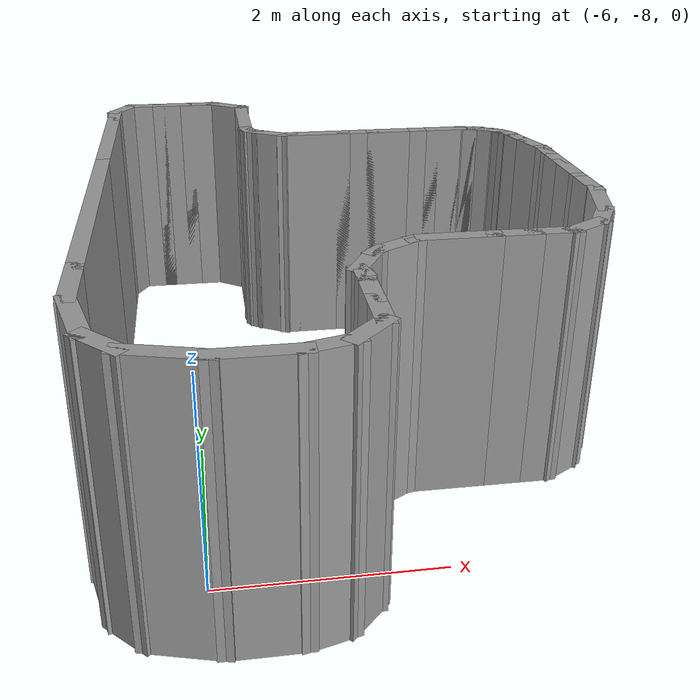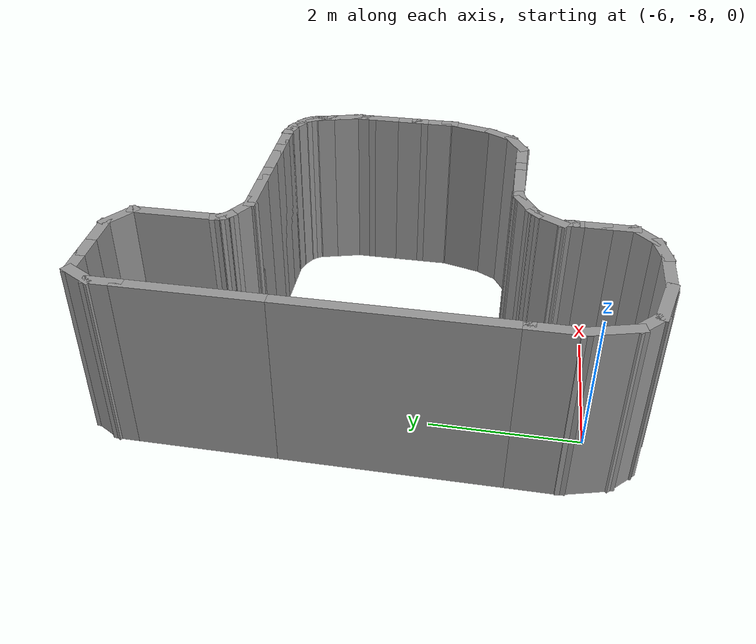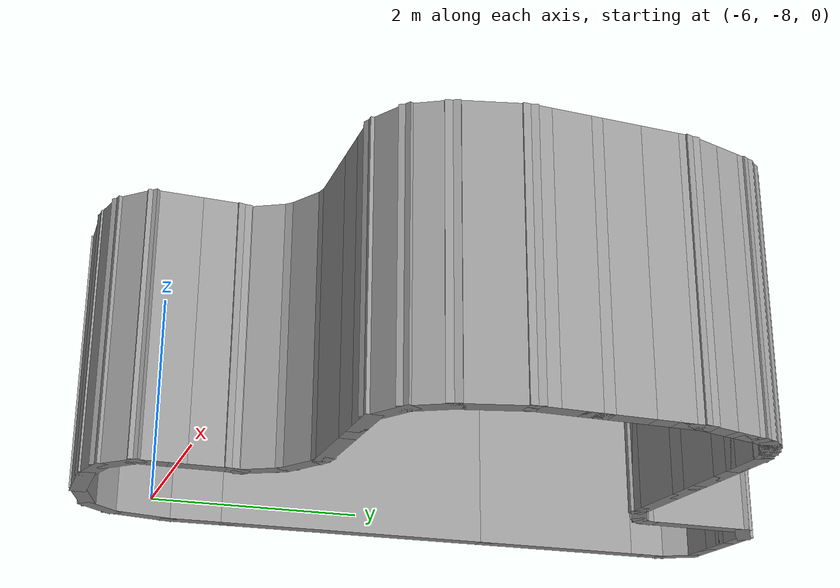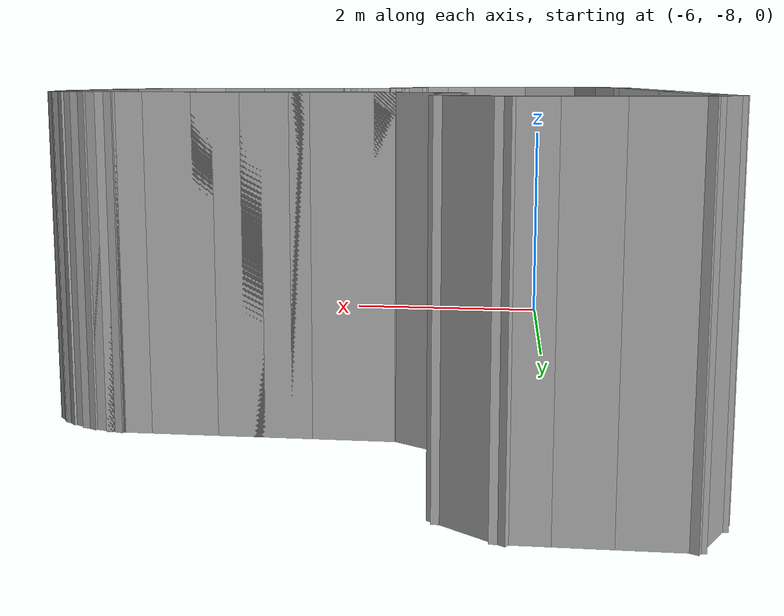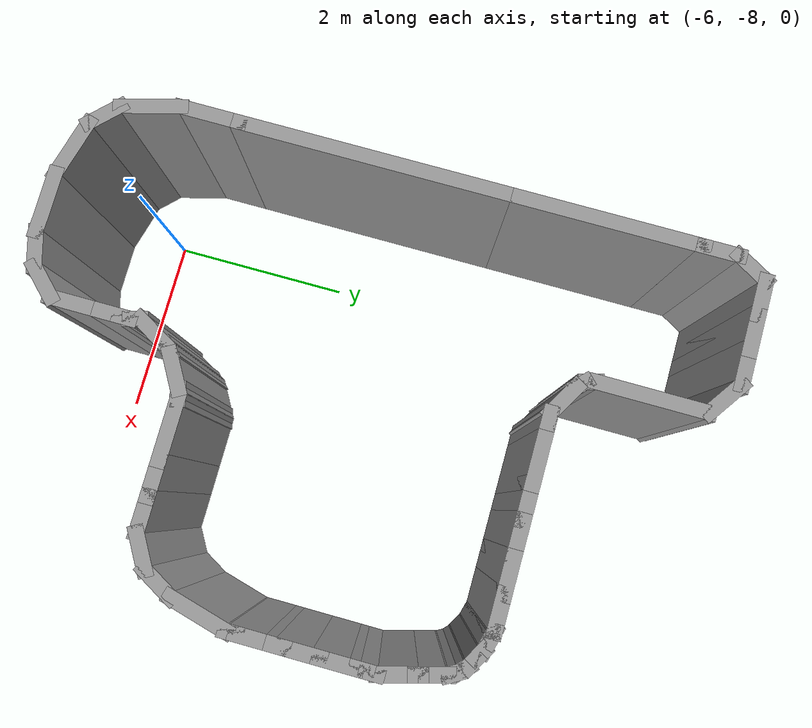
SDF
<?xml version='1.0'?>
<sdf version='1.7'>
  <model name='Untitled1'>
    <pose>-3.48045 -4.38921 0 0 -0 0</pose>
    <link name='Wall_0'>
      <collision name='Wall_0_Collision'>
        <geometry>
          <box>
            <size>1.25 0.15 2.5</size>
          </box>
        </geometry>
        <pose>0 0 1.25 0 -0 0</pose>
      </collision>
      <visual name='Wall_0_Visual'>
        <pose>0 0 1.25 0 -0 0</pose>
        <geometry>
          <box>
            <size>1.25 0.15 2.5</size>
          </box>
        </geometry>
        <material>
          <script>
            <uri>file://media/materials/scripts/gazebo.material</uri>
            <name>Gazebo/Grey</name>
          </script>
          <ambient>1 1 1 1</ambient>
        </material>
        <meta>
          <layer>0</layer>
        </meta>
      </visual>
      <pose>-1.8122 1.84891 0 0 -0 -1.5708</pose>
    </link>
    <link name='Wall_1'>
      <collision name='Wall_1_Collision'>
        <geometry>
          <box>
            <size>0.25 0.15 2.5</size>
          </box>
        </geometry>
        <pose>0 0 1.25 0 -0 0</pose>
      </collision>
      <visual name='Wall_1_Visual'>
        <pose>0 0 1.25 0 -0 0</pose>
        <geometry>
          <box>
            <size>0.25 0.15 2.5</size>
          </box>
        </geometry>
        <material>
          <script>
            <uri>file://media/materials/scripts/gazebo.material</uri>
            <name>Gazebo/Grey</name>
          </script>
          <ambient>1 1 1 1</ambient>
        </material>
        <meta>
          <layer>0</layer>
        </meta>
      </visual>
      <pose>-1.79926 1.25061 0 0 -0 -1.309</pose>
    </link>
    <link name='Wall_11'>
      <collision name='Wall_11_Collision'>
        <geometry>
          <box>
            <size>0.15 0.15 2.5</size>
          </box>
        </geometry>
        <pose>0 0 1.25 0 -0 0</pose>
      </collision>
      <visual name='Wall_11_Visual'>
        <pose>0 0 1.25 0 -0 0</pose>
        <geometry>
          <box>
            <size>0.15 0.15 2.5</size>
          </box>
        </geometry>
        <material>
          <script>
            <uri>file://media/materials/scripts/gazebo.material</uri>
            <name>Gazebo/Grey</name>
          </script>
          <ambient>1 1 1 1</ambient>
        </material>
        <meta>
          <layer>0</layer>
        </meta>
      </visual>
      <pose>0.6875 0.956604 0 0 -0 0</pose>
    </link>
    <link name='Wall_12'>
      <collision name='Wall_12_Collision'>
        <geometry>
          <box>
            <size>0.25 0.15 2.5</size>
          </box>
        </geometry>
        <pose>0 0 1.25 0 -0 0</pose>
      </collision>
      <visual name='Wall_12_Visual'>
        <pose>0 0 1.25 0 -0 0</pose>
        <geometry>
          <box>
            <size>0.25 0.15 2.5</size>
          </box>
        </geometry>
        <material>
          <script>
            <uri>file://media/materials/scripts/gazebo.material</uri>
            <name>Gazebo/Grey</name>
          </script>
          <ambient>1 1 1 1</ambient>
        </material>
        <meta>
          <layer>0</layer>
        </meta>
      </visual>
      <pose>0.735796 0.943663 0 0 -0 -0.261799</pose>
    </link>
    <link name='Wall_13'>
      <collision name='Wall_13_Collision'>
        <geometry>
          <box>
            <size>0.25 0.15 2.5</size>
          </box>
        </geometry>
        <pose>0 0 1.25 0 -0 0</pose>
      </collision>
      <visual name='Wall_13_Visual'>
        <pose>0 0 1.25 0 -0 0</pose>
        <geometry>
          <box>
            <size>0.25 0.15 2.5</size>
          </box>
        </geometry>
        <material>
          <script>
            <uri>file://media/materials/scripts/gazebo.material</uri>
            <name>Gazebo/Grey</name>
          </script>
          <ambient>1 1 1 1</ambient>
        </material>
        <meta>
          <layer>0</layer>
        </meta>
      </visual>
      <pose>0.832389 0.917781 0 0 -0 -0.261799</pose>
    </link>
    <link name='Wall_14'>
      <collision name='Wall_14_Collision'>
        <geometry>
          <box>
            <size>0.25 0.15 2.5</size>
          </box>
        </geometry>
        <pose>0 0 1.25 0 -0 0</pose>
      </collision>
      <visual name='Wall_14_Visual'>
        <pose>0 0 1.25 0 -0 0</pose>
        <geometry>
          <box>
            <size>0.25 0.15 2.5</size>
          </box>
        </geometry>
        <material>
          <script>
            <uri>file://media/materials/scripts/gazebo.material</uri>
            <name>Gazebo/Grey</name>
          </script>
          <ambient>1 1 1 1</ambient>
        </material>
        <meta>
          <layer>0</layer>
        </meta>
      </visual>
      <pose>0.923986 0.87984 0 0 -0 -0.523599</pose>
    </link>
    <link name='Wall_15'>
      <collision name='Wall_15_Collision'>
        <geometry>
          <box>
            <size>0.25 0.15 2.5</size>
          </box>
        </geometry>
        <pose>0 0 1.25 0 -0 0</pose>
      </collision>
      <visual name='Wall_15_Visual'>
        <pose>0 0 1.25 0 -0 0</pose>
        <geometry>
          <box>
            <size>0.25 0.15 2.5</size>
          </box>
        </geometry>
        <material>
          <script>
            <uri>file://media/materials/scripts/gazebo.material</uri>
            <name>Gazebo/Grey</name>
          </script>
          <ambient>1 1 1 1</ambient>
        </material>
        <meta>
          <layer>0</layer>
        </meta>
      </visual>
      <pose>1.01059 0.82984 0 0 -0 -0.523599</pose>
    </link>
    <link name='Wall_16'>
      <collision name='Wall_16_Collision'>
        <geometry>
          <box>
            <size>0.25 0.15 2.5</size>
          </box>
        </geometry>
        <pose>0 0 1.25 0 -0 0</pose>
      </collision>
      <visual name='Wall_16_Visual'>
        <pose>0 0 1.25 0 -0 0</pose>
        <geometry>
          <box>
            <size>0.25 0.15 2.5</size>
          </box>
        </geometry>
        <material>
          <script>
            <uri>file://media/materials/scripts/gazebo.material</uri>
            <name>Gazebo/Grey</name>
          </script>
          <ambient>1 1 1 1</ambient>
        </material>
        <meta>
          <layer>0</layer>
        </meta>
      </visual>
      <pose>1.08925 0.769485 0 0 -0 -0.785398</pose>
    </link>
    <link name='Wall_17'>
      <collision name='Wall_17_Collision'>
        <geometry>
          <box>
            <size>0.25 0.15 2.5</size>
          </box>
        </geometry>
        <pose>0 0 1.25 0 -0 0</pose>
      </collision>
      <visual name='Wall_17_Visual'>
        <pose>0 0 1.25 0 -0 0</pose>
        <geometry>
          <box>
            <size>0.25 0.15 2.5</size>
          </box>
        </geometry>
        <material>
          <script>
            <uri>file://media/materials/scripts/gazebo.material</uri>
            <name>Gazebo/Grey</name>
          </script>
          <ambient>1 1 1 1</ambient>
        </material>
        <meta>
          <layer>0</layer>
        </meta>
      </visual>
      <pose>1.1496 0.690828 0 0 -0 -1.0472</pose>
    </link>
    <link name='Wall_18'>
      <collision name='Wall_18_Collision'>
        <geometry>
          <box>
            <size>0.25 0.15 2.5</size>
          </box>
        </geometry>
        <pose>0 0 1.25 0 -0 0</pose>
      </collision>
      <visual name='Wall_18_Visual'>
        <pose>0 0 1.25 0 -0 0</pose>
        <geometry>
          <box>
            <size>0.25 0.15 2.5</size>
          </box>
        </geometry>
        <material>
          <script>
            <uri>file://media/materials/scripts/gazebo.material</uri>
            <name>Gazebo/Grey</name>
          </script>
          <ambient>1 1 1 1</ambient>
        </material>
        <meta>
          <layer>0</layer>
        </meta>
      </visual>
      <pose>1.18754 0.599231 0 0 -0 -1.309</pose>
    </link>
    <link name='Wall_19'>
      <collision name='Wall_19_Collision'>
        <geometry>
          <box>
            <size>0.25 0.15 2.5</size>
          </box>
        </geometry>
        <pose>0 0 1.25 0 -0 0</pose>
      </collision>
      <visual name='Wall_19_Visual'>
        <pose>0 0 1.25 0 -0 0</pose>
        <geometry>
          <box>
            <size>0.25 0.15 2.5</size>
          </box>
        </geometry>
        <material>
          <script>
            <uri>file://media/materials/scripts/gazebo.material</uri>
            <name>Gazebo/Grey</name>
          </script>
          <ambient>1 1 1 1</ambient>
        </material>
        <meta>
          <layer>0</layer>
        </meta>
      </visual>
      <pose>1.21342 0.502638 0 0 -0 -1.309</pose>
    </link>
    <link name='Wall_2'>
      <collision name='Wall_2_Collision'>
        <geometry>
          <box>
            <size>0.25 0.15 2.5</size>
          </box>
        </geometry>
        <pose>0 0 1.25 0 -0 0</pose>
      </collision>
      <visual name='Wall_2_Visual'>
        <pose>0 0 1.25 0 -0 0</pose>
        <geometry>
          <box>
            <size>0.25 0.15 2.5</size>
          </box>
        </geometry>
        <material>
          <script>
            <uri>file://media/materials/scripts/gazebo.material</uri>
            <name>Gazebo/Grey</name>
          </script>
          <ambient>1 1 1 1</ambient>
        </material>
        <meta>
          <layer>0</layer>
        </meta>
      </visual>
      <pose>-1.75096 1.16696 0 0 -0 -0.785398</pose>
    </link>
    <link name='Wall_20'>
      <collision name='Wall_20_Collision'>
        <geometry>
          <box>
            <size>0.25 0.15 2.5</size>
          </box>
        </geometry>
        <pose>0 0 1.25 0 -0 0</pose>
      </collision>
      <visual name='Wall_20_Visual'>
        <pose>0 0 1.25 0 -0 0</pose>
        <geometry>
          <box>
            <size>0.25 0.15 2.5</size>
          </box>
        </geometry>
        <material>
          <script>
            <uri>file://media/materials/scripts/gazebo.material</uri>
            <name>Gazebo/Grey</name>
          </script>
          <ambient>1 1 1 1</ambient>
        </material>
        <meta>
          <layer>0</layer>
        </meta>
      </visual>
      <pose>1.23931 0.406045 0 0 -0 -1.309</pose>
    </link>
    <link name='Wall_21'>
      <collision name='Wall_21_Collision'>
        <geometry>
          <box>
            <size>0.5 0.15 2.5</size>
          </box>
        </geometry>
        <pose>0 0 1.25 0 -0 0</pose>
      </collision>
      <visual name='Wall_21_Visual'>
        <pose>0 0 1.25 0 -0 0</pose>
        <geometry>
          <box>
            <size>0.5 0.15 2.5</size>
          </box>
        </geometry>
        <material>
          <script>
            <uri>file://media/materials/scripts/gazebo.material</uri>
            <name>Gazebo/Grey</name>
          </script>
          <ambient>1 1 1 1</ambient>
        </material>
        <meta>
          <layer>0</layer>
        </meta>
      </visual>
      <pose>1.29754 0.188712 0 0 -0 -1.309</pose>
    </link>
    <link name='Wall_22'>
      <collision name='Wall_22_Collision'>
        <geometry>
          <box>
            <size>0.25 0.15 2.5</size>
          </box>
        </geometry>
        <pose>0 0 1.25 0 -0 0</pose>
      </collision>
      <visual name='Wall_22_Visual'>
        <pose>0 0 1.25 0 -0 0</pose>
        <geometry>
          <box>
            <size>0.25 0.15 2.5</size>
          </box>
        </geometry>
        <material>
          <script>
            <uri>file://media/materials/scripts/gazebo.material</uri>
            <name>Gazebo/Grey</name>
          </script>
          <ambient>1 1 1 1</ambient>
        </material>
        <meta>
          <layer>0</layer>
        </meta>
      </visual>
      <pose>1.34283 -0.030325 0 0 -0 -1.5708</pose>
    </link>
    <link name='Wall_23'>
      <collision name='Wall_23_Collision'>
        <geometry>
          <box>
            <size>0.25 0.15 2.5</size>
          </box>
        </geometry>
        <pose>0 0 1.25 0 -0 0</pose>
      </collision>
      <visual name='Wall_23_Visual'>
        <pose>0 0 1.25 0 -0 0</pose>
        <geometry>
          <box>
            <size>0.25 0.15 2.5</size>
          </box>
        </geometry>
        <material>
          <script>
            <uri>file://media/materials/scripts/gazebo.material</uri>
            <name>Gazebo/Grey</name>
          </script>
          <ambient>1 1 1 1</ambient>
        </material>
        <meta>
          <layer>0</layer>
        </meta>
      </visual>
      <pose>1.34283 -0.130325 0 0 -0 -1.5708</pose>
    </link>
    <link name='Wall_24'>
      <collision name='Wall_24_Collision'>
        <geometry>
          <box>
            <size>0.5 0.15 2.5</size>
          </box>
        </geometry>
        <pose>0 0 1.25 0 -0 0</pose>
      </collision>
      <visual name='Wall_24_Visual'>
        <pose>0 0 1.25 0 -0 0</pose>
        <geometry>
          <box>
            <size>0.5 0.15 2.5</size>
          </box>
        </geometry>
        <material>
          <script>
            <uri>file://media/materials/scripts/gazebo.material</uri>
            <name>Gazebo/Grey</name>
          </script>
          <ambient>1 1 1 1</ambient>
        </material>
        <meta>
          <layer>0</layer>
        </meta>
      </visual>
      <pose>1.34283 -0.355325 0 0 -0 -1.5708</pose>
    </link>
    <link name='Wall_25'>
      <collision name='Wall_25_Collision'>
        <geometry>
          <box>
            <size>0.5 0.15 2.5</size>
          </box>
        </geometry>
        <pose>0 0 1.25 0 -0 0</pose>
      </collision>
      <visual name='Wall_25_Visual'>
        <pose>0 0 1.25 0 -0 0</pose>
        <geometry>
          <box>
            <size>0.5 0.15 2.5</size>
          </box>
        </geometry>
        <material>
          <script>
            <uri>file://media/materials/scripts/gazebo.material</uri>
            <name>Gazebo/Grey</name>
          </script>
          <ambient>1 1 1 1</ambient>
        </material>
        <meta>
          <layer>0</layer>
        </meta>
      </visual>
      <pose>1.34283 -0.705325 0 0 -0 -1.5708</pose>
    </link>
    <link name='Wall_26'>
      <collision name='Wall_26_Collision'>
        <geometry>
          <box>
            <size>0.25 0.15 2.5</size>
          </box>
        </geometry>
        <pose>0 0 1.25 0 -0 0</pose>
      </collision>
      <visual name='Wall_26_Visual'>
        <pose>0 0 1.25 0 -0 0</pose>
        <geometry>
          <box>
            <size>0.25 0.15 2.5</size>
          </box>
        </geometry>
        <material>
          <script>
            <uri>file://media/materials/scripts/gazebo.material</uri>
            <name>Gazebo/Grey</name>
          </script>
          <ambient>1 1 1 1</ambient>
        </material>
        <meta>
          <layer>0</layer>
        </meta>
      </visual>
      <pose>1.34283 -0.930325 0 0 -0 -1.5708</pose>
    </link>
    <link name='Wall_27'>
      <collision name='Wall_27_Collision'>
        <geometry>
          <box>
            <size>0.5 0.15 2.5</size>
          </box>
        </geometry>
        <pose>0 0 1.25 0 -0 0</pose>
      </collision>
      <visual name='Wall_27_Visual'>
        <pose>0 0 1.25 0 -0 0</pose>
        <geometry>
          <box>
            <size>0.5 0.15 2.5</size>
          </box>
        </geometry>
        <material>
          <script>
            <uri>file://media/materials/scripts/gazebo.material</uri>
            <name>Gazebo/Grey</name>
          </script>
          <ambient>1 1 1 1</ambient>
        </material>
        <meta>
          <layer>0</layer>
        </meta>
      </visual>
      <pose>1.34283 -1.15532 0 0 -0 -1.5708</pose>
    </link>
    <link name='Wall_28'>
      <collision name='Wall_28_Collision'>
        <geometry>
          <box>
            <size>0.25 0.15 2.5</size>
          </box>
        </geometry>
        <pose>0 0 1.25 0 -0 0</pose>
      </collision>
      <visual name='Wall_28_Visual'>
        <pose>0 0 1.25 0 -0 0</pose>
        <geometry>
          <box>
            <size>0.25 0.15 2.5</size>
          </box>
        </geometry>
        <material>
          <script>
            <uri>file://media/materials/scripts/gazebo.material</uri>
            <name>Gazebo/Grey</name>
          </script>
          <ambient>1 1 1 1</ambient>
        </material>
        <meta>
          <layer>0</layer>
        </meta>
      </visual>
      <pose>1.34283 -1.38033 0 0 -0 -1.5708</pose>
    </link>
    <link name='Wall_29'>
      <collision name='Wall_29_Collision'>
        <geometry>
          <box>
            <size>0.75 0.15 2.5</size>
          </box>
        </geometry>
        <pose>0 0 1.25 0 -0 0</pose>
      </collision>
      <visual name='Wall_29_Visual'>
        <pose>0 0 1.25 0 -0 0</pose>
        <geometry>
          <box>
            <size>0.75 0.15 2.5</size>
          </box>
        </geometry>
        <material>
          <script>
            <uri>file://media/materials/scripts/gazebo.material</uri>
            <name>Gazebo/Grey</name>
          </script>
          <ambient>1 1 1 1</ambient>
        </material>
        <meta>
          <layer>0</layer>
        </meta>
      </visual>
      <pose>1.26519 -1.7201 0 0 -0 -1.8326</pose>
    </link>
    <link name='Wall_3'>
      <collision name='Wall_3_Collision'>
        <geometry>
          <box>
            <size>0.5 0.15 2.5</size>
          </box>
        </geometry>
        <pose>0 0 1.25 0 -0 0</pose>
      </collision>
      <visual name='Wall_3_Visual'>
        <pose>0 0 1.25 0 -0 0</pose>
        <geometry>
          <box>
            <size>0.5 0.15 2.5</size>
          </box>
        </geometry>
        <material>
          <script>
            <uri>file://media/materials/scripts/gazebo.material</uri>
            <name>Gazebo/Grey</name>
          </script>
          <ambient>1 1 1 1</ambient>
        </material>
        <meta>
          <layer>0</layer>
        </meta>
      </visual>
      <pose>-1.56405 1.0441 0 0 -0 -0.523599</pose>
    </link>
    <link name='Wall_30'>
      <collision name='Wall_30_Collision'>
        <geometry>
          <box>
            <size>0.5 0.15 2.5</size>
          </box>
        </geometry>
        <pose>0 0 1.25 0 -0 0</pose>
      </collision>
      <visual name='Wall_30_Visual'>
        <pose>0 0 1.25 0 -0 0</pose>
        <geometry>
          <box>
            <size>0.5 0.15 2.5</size>
          </box>
        </geometry>
        <material>
          <script>
            <uri>file://media/materials/scripts/gazebo.material</uri>
            <name>Gazebo/Grey</name>
          </script>
          <ambient>1 1 1 1</ambient>
        </material>
        <meta>
          <layer>0</layer>
        </meta>
      </visual>
      <pose>1.10004 -2.16143 0 0 -0 -2.0944</pose>
    </link>
    <link name='Wall_31'>
      <collision name='Wall_31_Collision'>
        <geometry>
          <box>
            <size>0.5 0.15 2.5</size>
          </box>
        </geometry>
        <pose>0 0 1.25 0 -0 0</pose>
      </collision>
      <visual name='Wall_31_Visual'>
        <pose>0 0 1.25 0 -0 0</pose>
        <geometry>
          <box>
            <size>0.5 0.15 2.5</size>
          </box>
        </geometry>
        <material>
          <script>
            <uri>file://media/materials/scripts/gazebo.material</uri>
            <name>Gazebo/Grey</name>
          </script>
          <ambient>1 1 1 1</ambient>
        </material>
        <meta>
          <layer>0</layer>
        </meta>
      </visual>
      <pose>0.860987 -2.40049 0 0 -0 -2.61799</pose>
    </link>
    <link name='Wall_32'>
      <collision name='Wall_32_Collision'>
        <geometry>
          <box>
            <size>0.5 0.15 2.5</size>
          </box>
        </geometry>
        <pose>0 0 1.25 0 -0 0</pose>
      </collision>
      <visual name='Wall_32_Visual'>
        <pose>0 0 1.25 0 -0 0</pose>
        <geometry>
          <box>
            <size>0.5 0.15 2.5</size>
          </box>
        </geometry>
        <material>
          <script>
            <uri>file://media/materials/scripts/gazebo.material</uri>
            <name>Gazebo/Grey</name>
          </script>
          <ambient>1 1 1 1</ambient>
        </material>
        <meta>
          <layer>0</layer>
        </meta>
      </visual>
      <pose>0.534433 -2.48799 0 0 -0 3.14159</pose>
    </link>
    <link name='Wall_33'>
      <collision name='Wall_33_Collision'>
        <geometry>
          <box>
            <size>0.5 0.15 2.5</size>
          </box>
        </geometry>
        <pose>0 0 1.25 0 -0 0</pose>
      </collision>
      <visual name='Wall_33_Visual'>
        <pose>0 0 1.25 0 -0 0</pose>
        <geometry>
          <box>
            <size>0.5 0.15 2.5</size>
          </box>
        </geometry>
        <material>
          <script>
            <uri>file://media/materials/scripts/gazebo.material</uri>
            <name>Gazebo/Grey</name>
          </script>
          <ambient>1 1 1 1</ambient>
        </material>
        <meta>
          <layer>0</layer>
        </meta>
      </visual>
      <pose>0.184433 -2.48799 0 0 -0 3.14159</pose>
    </link>
    <link name='Wall_34'>
      <collision name='Wall_34_Collision'>
        <geometry>
          <box>
            <size>0.75 0.15 2.5</size>
          </box>
        </geometry>
        <pose>0 0 1.25 0 -0 0</pose>
      </collision>
      <visual name='Wall_34_Visual'>
        <pose>0 0 1.25 0 -0 0</pose>
        <geometry>
          <box>
            <size>0.75 0.15 2.5</size>
          </box>
        </geometry>
        <material>
          <script>
            <uri>file://media/materials/scripts/gazebo.material</uri>
            <name>Gazebo/Grey</name>
          </script>
          <ambient>1 1 1 1</ambient>
        </material>
        <meta>
          <layer>0</layer>
        </meta>
      </visual>
      <pose>-0.290567 -2.48799 0 0 -0 3.14159</pose>
    </link>
    <link name='Wall_35'>
      <collision name='Wall_35_Collision'>
        <geometry>
          <box>
            <size>0.25 0.15 2.5</size>
          </box>
        </geometry>
        <pose>0 0 1.25 0 -0 0</pose>
      </collision>
      <visual name='Wall_35_Visual'>
        <pose>0 0 1.25 0 -0 0</pose>
        <geometry>
          <box>
            <size>0.25 0.15 2.5</size>
          </box>
        </geometry>
        <material>
          <script>
            <uri>file://media/materials/scripts/gazebo.material</uri>
            <name>Gazebo/Grey</name>
          </script>
          <ambient>1 1 1 1</ambient>
        </material>
        <meta>
          <layer>0</layer>
        </meta>
      </visual>
      <pose>-0.638864 -2.50093 0 0 -0 -2.87979</pose>
    </link>
    <link name='Wall_36'>
      <collision name='Wall_36_Collision'>
        <geometry>
          <box>
            <size>0.5 0.15 2.5</size>
          </box>
        </geometry>
        <pose>0 0 1.25 0 -0 0</pose>
      </collision>
      <visual name='Wall_36_Visual'>
        <pose>0 0 1.25 0 -0 0</pose>
        <geometry>
          <box>
            <size>0.5 0.15 2.5</size>
          </box>
        </geometry>
        <material>
          <script>
            <uri>file://media/materials/scripts/gazebo.material</uri>
            <name>Gazebo/Grey</name>
          </script>
          <ambient>1 1 1 1</ambient>
        </material>
        <meta>
          <layer>0</layer>
        </meta>
      </visual>
      <pose>-0.838714 -2.60137 0 0 -0 -2.61799</pose>
    </link>
    <link name='Wall_37'>
      <collision name='Wall_37_Collision'>
        <geometry>
          <box>
            <size>0.25 0.15 2.5</size>
          </box>
        </geometry>
        <pose>0 0 1.25 0 -0 0</pose>
      </collision>
      <visual name='Wall_37_Visual'>
        <pose>0 0 1.25 0 -0 0</pose>
        <geometry>
          <box>
            <size>0.25 0.15 2.5</size>
          </box>
        </geometry>
        <material>
          <script>
            <uri>file://media/materials/scripts/gazebo.material</uri>
            <name>Gazebo/Grey</name>
          </script>
          <ambient>1 1 1 1</ambient>
        </material>
        <meta>
          <layer>0</layer>
        </meta>
      </visual>
      <pose>-1.02562 -2.72423 0 0 -0 -2.35619</pose>
    </link>
    <link name='Wall_38'>
      <collision name='Wall_38_Collision'>
        <geometry>
          <box>
            <size>0.5 0.15 2.5</size>
          </box>
        </geometry>
        <pose>0 0 1.25 0 -0 0</pose>
      </collision>
      <visual name='Wall_38_Visual'>
        <pose>0 0 1.25 0 -0 0</pose>
        <geometry>
          <box>
            <size>0.5 0.15 2.5</size>
          </box>
        </geometry>
        <material>
          <script>
            <uri>file://media/materials/scripts/gazebo.material</uri>
            <name>Gazebo/Grey</name>
          </script>
          <ambient>1 1 1 1</ambient>
        </material>
        <meta>
          <layer>0</layer>
        </meta>
      </visual>
      <pose>-1.14848 -2.91114 0 0 -0 -2.0944</pose>
    </link>
    <link name='Wall_39'>
      <collision name='Wall_39_Collision'>
        <geometry>
          <box>
            <size>0.25 0.15 2.5</size>
          </box>
        </geometry>
        <pose>0 0 1.25 0 -0 0</pose>
      </collision>
      <visual name='Wall_39_Visual'>
        <pose>0 0 1.25 0 -0 0</pose>
        <geometry>
          <box>
            <size>0.25 0.15 2.5</size>
          </box>
        </geometry>
        <material>
          <script>
            <uri>file://media/materials/scripts/gazebo.material</uri>
            <name>Gazebo/Grey</name>
          </script>
          <ambient>1 1 1 1</ambient>
        </material>
        <meta>
          <layer>0</layer>
        </meta>
      </visual>
      <pose>-1.22304 -3.11099 0 0 -0 -1.309</pose>
    </link>
    <link name='Wall_4'>
      <collision name='Wall_4_Collision'>
        <geometry>
          <box>
            <size>0.25 0.15 2.5</size>
          </box>
        </geometry>
        <pose>0 0 1.25 0 -0 0</pose>
      </collision>
      <visual name='Wall_4_Visual'>
        <pose>0 0 1.25 0 -0 0</pose>
        <geometry>
          <box>
            <size>0.25 0.15 2.5</size>
          </box>
        </geometry>
        <material>
          <script>
            <uri>file://media/materials/scripts/gazebo.material</uri>
            <name>Gazebo/Grey</name>
          </script>
          <ambient>1 1 1 1</ambient>
        </material>
        <meta>
          <layer>0</layer>
        </meta>
      </visual>
      <pose>-1.3625 0.956604 0 0 -0 0</pose>
    </link>
    <link name='Wall_40'>
      <collision name='Wall_40_Collision'>
        <geometry>
          <box>
            <size>0.25 0.15 2.5</size>
          </box>
        </geometry>
        <pose>0 0 1.25 0 -0 0</pose>
      </collision>
      <visual name='Wall_40_Visual'>
        <pose>0 0 1.25 0 -0 0</pose>
        <geometry>
          <box>
            <size>0.25 0.15 2.5</size>
          </box>
        </geometry>
        <material>
          <script>
            <uri>file://media/materials/scripts/gazebo.material</uri>
            <name>Gazebo/Grey</name>
          </script>
          <ambient>1 1 1 1</ambient>
        </material>
        <meta>
          <layer>0</layer>
        </meta>
      </visual>
      <pose>-1.2101 -3.20928 0 0 -0 -1.5708</pose>
    </link>
    <link name='Wall_41'>
      <collision name='Wall_41_Collision'>
        <geometry>
          <box>
            <size>0.5 0.15 2.5</size>
          </box>
        </geometry>
        <pose>0 0 1.25 0 -0 0</pose>
      </collision>
      <visual name='Wall_41_Visual'>
        <pose>0 0 1.25 0 -0 0</pose>
        <geometry>
          <box>
            <size>0.5 0.15 2.5</size>
          </box>
        </geometry>
        <material>
          <script>
            <uri>file://media/materials/scripts/gazebo.material</uri>
            <name>Gazebo/Grey</name>
          </script>
          <ambient>1 1 1 1</ambient>
        </material>
        <meta>
          <layer>0</layer>
        </meta>
      </visual>
      <pose>-1.2101 -3.43428 0 0 -0 -1.5708</pose>
    </link>
    <link name='Wall_42'>
      <collision name='Wall_42_Collision'>
        <geometry>
          <box>
            <size>0.5 0.15 2.5</size>
          </box>
        </geometry>
        <pose>0 0 1.25 0 -0 0</pose>
      </collision>
      <visual name='Wall_42_Visual'>
        <pose>0 0 1.25 0 -0 0</pose>
        <geometry>
          <box>
            <size>0.5 0.15 2.5</size>
          </box>
        </geometry>
        <material>
          <script>
            <uri>file://media/materials/scripts/gazebo.material</uri>
            <name>Gazebo/Grey</name>
          </script>
          <ambient>1 1 1 1</ambient>
        </material>
        <meta>
          <layer>0</layer>
        </meta>
      </visual>
      <pose>-1.2101 -3.78428 0 0 -0 -1.5708</pose>
    </link>
    <link name='Wall_43'>
      <collision name='Wall_43_Collision'>
        <geometry>
          <box>
            <size>0.5 0.15 2.5</size>
          </box>
        </geometry>
        <pose>0 0 1.25 0 -0 0</pose>
      </collision>
      <visual name='Wall_43_Visual'>
        <pose>0 0 1.25 0 -0 0</pose>
        <geometry>
          <box>
            <size>0.5 0.15 2.5</size>
          </box>
        </geometry>
        <material>
          <script>
            <uri>file://media/materials/scripts/gazebo.material</uri>
            <name>Gazebo/Grey</name>
          </script>
          <ambient>1 1 1 1</ambient>
        </material>
        <meta>
          <layer>0</layer>
        </meta>
      </visual>
      <pose>-1.33384 -4.08303 0 0 -0 -2.35619</pose>
    </link>
    <link name='Wall_44'>
      <collision name='Wall_44_Collision'>
        <geometry>
          <box>
            <size>0.5 0.15 2.5</size>
          </box>
        </geometry>
        <pose>0 0 1.25 0 -0 0</pose>
      </collision>
      <visual name='Wall_44_Visual'>
        <pose>0 0 1.25 0 -0 0</pose>
        <geometry>
          <box>
            <size>0.5 0.15 2.5</size>
          </box>
        </geometry>
        <material>
          <script>
            <uri>file://media/materials/scripts/gazebo.material</uri>
            <name>Gazebo/Grey</name>
          </script>
          <ambient>1 1 1 1</ambient>
        </material>
        <meta>
          <layer>0</layer>
        </meta>
      </visual>
      <pose>-1.62662 -4.25206 0 0 -0 -2.87979</pose>
    </link>
    <link name='Wall_45'>
      <collision name='Wall_45_Collision'>
        <geometry>
          <box>
            <size>0.75 0.15 2.5</size>
          </box>
        </geometry>
        <pose>0 0 1.25 0 -0 0</pose>
      </collision>
      <visual name='Wall_45_Visual'>
        <pose>0 0 1.25 0 -0 0</pose>
        <geometry>
          <box>
            <size>0.75 0.15 2.5</size>
          </box>
        </geometry>
        <material>
          <script>
            <uri>file://media/materials/scripts/gazebo.material</uri>
            <name>Gazebo/Grey</name>
          </script>
          <ambient>1 1 1 1</ambient>
        </material>
        <meta>
          <layer>0</layer>
        </meta>
      </visual>
      <pose>-2.09566 -4.29736 0 0 -0 3.14159</pose>
    </link>
    <link name='Wall_46'>
      <collision name='Wall_46_Collision'>
        <geometry>
          <box>
            <size>0.75 0.15 2.5</size>
          </box>
        </geometry>
        <pose>0 0 1.25 0 -0 0</pose>
      </collision>
      <visual name='Wall_46_Visual'>
        <pose>0 0 1.25 0 -0 0</pose>
        <geometry>
          <box>
            <size>0.75 0.15 2.5</size>
          </box>
        </geometry>
        <material>
          <script>
            <uri>file://media/materials/scripts/gazebo.material</uri>
            <name>Gazebo/Grey</name>
          </script>
          <ambient>1 1 1 1</ambient>
        </material>
        <meta>
          <layer>0</layer>
        </meta>
      </visual>
      <pose>-2.68544 -4.21971 0 0 -0 2.87979</pose>
    </link>
    <link name='Wall_47'>
      <collision name='Wall_47_Collision'>
        <geometry>
          <box>
            <size>0.5 0.15 2.5</size>
          </box>
        </geometry>
        <pose>0 0 1.25 0 -0 0</pose>
      </collision>
      <visual name='Wall_47_Visual'>
        <pose>0 0 1.25 0 -0 0</pose>
        <geometry>
          <box>
            <size>0.5 0.15 2.5</size>
          </box>
        </geometry>
        <material>
          <script>
            <uri>file://media/materials/scripts/gazebo.material</uri>
            <name>Gazebo/Grey</name>
          </script>
          <ambient>1 1 1 1</ambient>
        </material>
        <meta>
          <layer>0</layer>
        </meta>
      </visual>
      <pose>-3.09896 -4.01832 0 0 -0 2.35619</pose>
    </link>
    <link name='Wall_48'>
      <collision name='Wall_48_Collision'>
        <geometry>
          <box>
            <size>0.75 0.15 2.5</size>
          </box>
        </geometry>
        <pose>0 0 1.25 0 -0 0</pose>
      </collision>
      <visual name='Wall_48_Visual'>
        <pose>0 0 1.25 0 -0 0</pose>
        <geometry>
          <box>
            <size>0.75 0.15 2.5</size>
          </box>
        </geometry>
        <material>
          <script>
            <uri>file://media/materials/scripts/gazebo.material</uri>
            <name>Gazebo/Grey</name>
          </script>
          <ambient>1 1 1 1</ambient>
        </material>
        <meta>
          <layer>0</layer>
        </meta>
      </visual>
      <pose>-3.30035 -3.6048 0 0 -0 1.8326</pose>
    </link>
    <link name='Wall_49'>
      <collision name='Wall_49_Collision'>
        <geometry>
          <box>
            <size>0.75 0.15 2.5</size>
          </box>
        </geometry>
        <pose>0 0 1.25 0 -0 0</pose>
      </collision>
      <visual name='Wall_49_Visual'>
        <pose>0 0 1.25 0 -0 0</pose>
        <geometry>
          <box>
            <size>0.75 0.15 2.5</size>
          </box>
        </geometry>
        <material>
          <script>
            <uri>file://media/materials/scripts/gazebo.material</uri>
            <name>Gazebo/Grey</name>
          </script>
          <ambient>1 1 1 1</ambient>
        </material>
        <meta>
          <layer>0</layer>
        </meta>
      </visual>
      <pose>-3.37799 -3.01502 0 0 -0 1.5708</pose>
    </link>
    <link name='Wall_5'>
      <collision name='Wall_5_Collision'>
        <geometry>
          <box>
            <size>0.75 0.15 2.5</size>
          </box>
        </geometry>
        <pose>0 0 1.25 0 -0 0</pose>
      </collision>
      <visual name='Wall_5_Visual'>
        <pose>0 0 1.25 0 -0 0</pose>
        <geometry>
          <box>
            <size>0.75 0.15 2.5</size>
          </box>
        </geometry>
        <material>
          <script>
            <uri>file://media/materials/scripts/gazebo.material</uri>
            <name>Gazebo/Grey</name>
          </script>
          <ambient>1 1 1 1</ambient>
        </material>
        <meta>
          <layer>0</layer>
        </meta>
      </visual>
      <pose>-1.0125 0.956604 0 0 -0 0</pose>
    </link>
    <link name='Wall_50'>
      <collision name='Wall_50_Collision'>
        <geometry>
          <box>
            <size>3 0.15 2.5</size>
          </box>
        </geometry>
        <pose>0 0 1.25 0 -0 0</pose>
      </collision>
      <visual name='Wall_50_Visual'>
        <pose>0 0 1.25 0 -0 0</pose>
        <geometry>
          <box>
            <size>3 0.15 2.5</size>
          </box>
        </geometry>
        <material>
          <script>
            <uri>file://media/materials/scripts/gazebo.material</uri>
            <name>Gazebo/Grey</name>
          </script>
          <ambient>1 1 1 1</ambient>
        </material>
        <meta>
          <layer>0</layer>
        </meta>
      </visual>
      <pose>-3.37799 -1.29002 0 0 -0 1.5708</pose>
    </link>
    <link name='Wall_51'>
      <collision name='Wall_51_Collision'>
        <geometry>
          <box>
            <size>2 0.15 2.5</size>
          </box>
        </geometry>
        <pose>0 0 1.25 0 -0 0</pose>
      </collision>
      <visual name='Wall_51_Visual'>
        <pose>0 0 1.25 0 -0 0</pose>
        <geometry>
          <box>
            <size>2 0.15 2.5</size>
          </box>
        </geometry>
        <material>
          <script>
            <uri>file://media/materials/scripts/gazebo.material</uri>
            <name>Gazebo/Grey</name>
          </script>
          <ambient>1 1 1 1</ambient>
        </material>
        <meta>
          <layer>0</layer>
        </meta>
      </visual>
      <pose>-3.37799 1.05998 0 0 -0 1.5708</pose>
    </link>
    <link name='Wall_52'>
      <collision name='Wall_52_Collision'>
        <geometry>
          <box>
            <size>0.5 0.15 2.5</size>
          </box>
        </geometry>
        <pose>0 0 1.25 0 -0 0</pose>
      </collision>
      <visual name='Wall_52_Visual'>
        <pose>0 0 1.25 0 -0 0</pose>
        <geometry>
          <box>
            <size>0.5 0.15 2.5</size>
          </box>
        </geometry>
        <material>
          <script>
            <uri>file://media/materials/scripts/gazebo.material</uri>
            <name>Gazebo/Grey</name>
          </script>
          <ambient>1 1 1 1</ambient>
        </material>
        <meta>
          <layer>0</layer>
        </meta>
      </visual>
      <pose>-3.37799 2.15998 0 0 -0 1.5708</pose>
    </link>
    <link name='Wall_53'>
      <collision name='Wall_53_Collision'>
        <geometry>
          <box>
            <size>0.5 0.15 2.5</size>
          </box>
        </geometry>
        <pose>0 0 1.25 0 -0 0</pose>
      </collision>
      <visual name='Wall_53_Visual'>
        <pose>0 0 1.25 0 -0 0</pose>
        <geometry>
          <box>
            <size>0.5 0.15 2.5</size>
          </box>
        </geometry>
        <material>
          <script>
            <uri>file://media/materials/scripts/gazebo.material</uri>
            <name>Gazebo/Grey</name>
          </script>
          <ambient>1 1 1 1</ambient>
        </material>
        <meta>
          <layer>0</layer>
        </meta>
      </visual>
      <pose>-3.29049 2.48653 0 0 -0 1.0472</pose>
    </link>
    <link name='Wall_54'>
      <collision name='Wall_54_Collision'>
        <geometry>
          <box>
            <size>0.5 0.15 2.5</size>
          </box>
        </geometry>
        <pose>0 0 1.25 0 -0 0</pose>
      </collision>
      <visual name='Wall_54_Visual'>
        <pose>0 0 1.25 0 -0 0</pose>
        <geometry>
          <box>
            <size>0.5 0.15 2.5</size>
          </box>
        </geometry>
        <material>
          <script>
            <uri>file://media/materials/scripts/gazebo.material</uri>
            <name>Gazebo/Grey</name>
          </script>
          <ambient>1 1 1 1</ambient>
        </material>
        <meta>
          <layer>0</layer>
        </meta>
      </visual>
      <pose>-3.02799 2.63809 0 0 -0 0</pose>
    </link>
    <link name='Wall_55'>
      <collision name='Wall_55_Collision'>
        <geometry>
          <box>
            <size>0.5 0.15 2.5</size>
          </box>
        </geometry>
        <pose>0 0 1.25 0 -0 0</pose>
      </collision>
      <visual name='Wall_55_Visual'>
        <pose>0 0 1.25 0 -0 0</pose>
        <geometry>
          <box>
            <size>0.5 0.15 2.5</size>
          </box>
        </geometry>
        <material>
          <script>
            <uri>file://media/materials/scripts/gazebo.material</uri>
            <name>Gazebo/Grey</name>
          </script>
          <ambient>1 1 1 1</ambient>
        </material>
        <meta>
          <layer>0</layer>
        </meta>
      </visual>
      <pose>-2.67799 2.63809 0 0 -0 0</pose>
    </link>
    <link name='Wall_56'>
      <collision name='Wall_56_Collision'>
        <geometry>
          <box>
            <size>0.5 0.15 2.5</size>
          </box>
        </geometry>
        <pose>0 0 1.25 0 -0 0</pose>
      </collision>
      <visual name='Wall_56_Visual'>
        <pose>0 0 1.25 0 -0 0</pose>
        <geometry>
          <box>
            <size>0.5 0.15 2.5</size>
          </box>
        </geometry>
        <material>
          <script>
            <uri>file://media/materials/scripts/gazebo.material</uri>
            <name>Gazebo/Grey</name>
          </script>
          <ambient>1 1 1 1</ambient>
        </material>
        <meta>
          <layer>0</layer>
        </meta>
      </visual>
      <pose>-2.32799 2.63809 0 0 -0 0</pose>
    </link>
    <link name='Wall_58'>
      <collision name='Wall_58_Collision'>
        <geometry>
          <box>
            <size>0.566348 0.15 2.5</size>
          </box>
        </geometry>
        <pose>0 0 1.25 0 -0 0</pose>
      </collision>
      <visual name='Wall_58_Visual'>
        <pose>0 0 1.25 0 -0 0</pose>
        <geometry>
          <box>
            <size>0.566348 0.15 2.5</size>
          </box>
        </geometry>
        <material>
          <script>
            <uri>file://media/materials/scripts/gazebo.material</uri>
            <name>Gazebo/Grey</name>
          </script>
          <ambient>1 1 1 1</ambient>
        </material>
        <meta>
          <layer>0</layer>
        </meta>
      </visual>
      <pose>-1.9826 2.5185 0 0 -0 -0.611955</pose>
    </link>
    <link name='Wall_6'>
      <collision name='Wall_6_Collision'>
        <geometry>
          <box>
            <size>0.5 0.15 2.5</size>
          </box>
        </geometry>
        <pose>0 0 1.25 0 -0 0</pose>
      </collision>
      <visual name='Wall_6_Visual'>
        <pose>0 0 1.25 0 -0 0</pose>
        <geometry>
          <box>
            <size>0.5 0.15 2.5</size>
          </box>
        </geometry>
        <material>
          <script>
            <uri>file://media/materials/scripts/gazebo.material</uri>
            <name>Gazebo/Grey</name>
          </script>
          <ambient>1 1 1 1</ambient>
        </material>
        <meta>
          <layer>0</layer>
        </meta>
      </visual>
      <pose>-0.5375 0.956604 0 0 -0 0</pose>
    </link>
    <link name='Wall_7'>
      <collision name='Wall_7_Collision'>
        <geometry>
          <box>
            <size>0.5 0.15 2.5</size>
          </box>
        </geometry>
        <pose>0 0 1.25 0 -0 0</pose>
      </collision>
      <visual name='Wall_7_Visual'>
        <pose>0 0 1.25 0 -0 0</pose>
        <geometry>
          <box>
            <size>0.5 0.15 2.5</size>
          </box>
        </geometry>
        <material>
          <script>
            <uri>file://media/materials/scripts/gazebo.material</uri>
            <name>Gazebo/Grey</name>
          </script>
          <ambient>1 1 1 1</ambient>
        </material>
        <meta>
          <layer>0</layer>
        </meta>
      </visual>
      <pose>-0.1875 0.956604 0 0 -0 0</pose>
    </link>
    <link name='Wall_8'>
      <collision name='Wall_8_Collision'>
        <geometry>
          <box>
            <size>0.5 0.15 2.5</size>
          </box>
        </geometry>
        <pose>0 0 1.25 0 -0 0</pose>
      </collision>
      <visual name='Wall_8_Visual'>
        <pose>0 0 1.25 0 -0 0</pose>
        <geometry>
          <box>
            <size>0.5 0.15 2.5</size>
          </box>
        </geometry>
        <material>
          <script>
            <uri>file://media/materials/scripts/gazebo.material</uri>
            <name>Gazebo/Grey</name>
          </script>
          <ambient>1 1 1 1</ambient>
        </material>
        <meta>
          <layer>0</layer>
        </meta>
      </visual>
      <pose>0.1625 0.956604 0 0 -0 0</pose>
    </link>
    <link name='Wall_9'>
      <collision name='Wall_9_Collision'>
        <geometry>
          <box>
            <size>0.5 0.15 2.5</size>
          </box>
        </geometry>
        <pose>0 0 1.25 0 -0 0</pose>
      </collision>
      <visual name='Wall_9_Visual'>
        <pose>0 0 1.25 0 -0 0</pose>
        <geometry>
          <box>
            <size>0.5 0.15 2.5</size>
          </box>
        </geometry>
        <material>
          <script>
            <uri>file://media/materials/scripts/gazebo.material</uri>
            <name>Gazebo/Grey</name>
          </script>
          <ambient>1 1 1 1</ambient>
        </material>
        <meta>
          <layer>0</layer>
        </meta>
      </visual>
      <pose>0.5125 0.956604 0 0 -0 0</pose>
    </link>
    <static>1</static>
  </model>
</sdf>
